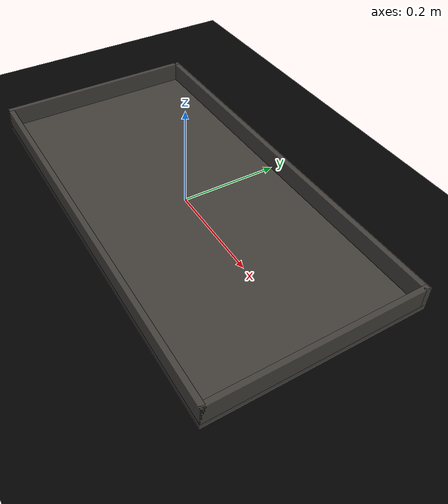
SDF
<?xml version="1.0" ?>
<sdf version="1.6">
  <world name="world">
    <model name="pool">
      <pose>0 0 0 0 0 0</pose>
      <link name="wall_xmin">
        <pose>-0.405 0.0 0.02 0 0 0</pose>
        <collision name="wall_xmin_collision">
          <pose>0 0 0 0 0 0</pose>
          <geometry>
            <box>
              <size>0.01 0.42000000000000004 0.04</size>
            </box>
          </geometry>
        </collision>
        <visual name="wall_xmin_visual">
          <pose>0 0 0 0 0 0</pose>
          <geometry>
            <box>
              <size>0.01 0.42000000000000004 0.04</size>
            </box>
          </geometry>
          <material>
            <ambient>0.78 0.74 0.68 0.3</ambient>
            <diffuse>0.88 0.84 0.78 0.3</diffuse>
            <specular>0.30 0.28 0.25 0.3</specular>
            <emissive>0.0  0.0  0.0  0.3</emissive>
          </material>
        </visual>
      </link>
      <link name="wall_xmax">
        <pose>0.405 0.0 0.02 0 0 0</pose>
        <collision name="wall_xmax_collision">
          <pose>0 0 0 0 0 0</pose>
          <geometry>
            <box>
              <size>0.01 0.42000000000000004 0.04</size>
            </box>
          </geometry>
        </collision>
        <visual name="wall_xmax_visual">
          <pose>0 0 0 0 0 0</pose>
          <geometry>
            <box>
              <size>0.01 0.42000000000000004 0.04</size>
            </box>
          </geometry>
          <material>
            <ambient>0.78 0.74 0.68 0.3</ambient>
            <diffuse>0.88 0.84 0.78 0.3</diffuse>
            <specular>0.30 0.28 0.25 0.3</specular>
            <emissive>0.0  0.0  0.0  0.3</emissive>
          </material>
        </visual>
      </link>
      <link name="wall_ymin">
        <pose>0.0 -0.20500000000000002 0.02 0 0 0</pose>
        <collision name="wall_ymin_collision">
          <pose>0 0 0 0 0 0</pose>
          <geometry>
            <box>
              <size>0.8200000000000001 0.01 0.04</size>
            </box>
          </geometry>
        </collision>
        <visual name="wall_ymin_visual">
          <pose>0 0 0 0 0 0</pose>
          <geometry>
            <box>
              <size>0.8200000000000001 0.01 0.04</size>
            </box>
          </geometry>
          <material>
            <ambient>0.78 0.74 0.68 0.3</ambient>
            <diffuse>0.88 0.84 0.78 0.3</diffuse>
            <specular>0.30 0.28 0.25 0.3</specular>
            <emissive>0.0  0.0  0.0  0.3</emissive>
          </material>
        </visual>
      </link>
      <link name="wall_ymax">
        <pose>0.0 0.20500000000000002 0.02 0 0 0</pose>
        <collision name="wall_ymax_collision">
          <pose>0 0 0 0 0 0</pose>
          <geometry>
            <box>
              <size>0.8200000000000001 0.01 0.04</size>
            </box>
          </geometry>
        </collision>
        <visual name="wall_ymax_visual">
          <pose>0 0 0 0 0 0</pose>
          <geometry>
            <box>
              <size>0.8200000000000001 0.01 0.04</size>
            </box>
          </geometry>
          <material>
            <ambient>0.78 0.74 0.68 0.3</ambient>
            <diffuse>0.88 0.84 0.78 0.3</diffuse>
            <specular>0.30 0.28 0.25 0.3</specular>
            <emissive>0.0  0.0  0.0  0.3</emissive>
          </material>
        </visual>
      </link>
      <link name="floor">
        <pose>0.0 0.0 -0.005 0 0 0</pose>
        <collision name="floor_collision">
          <pose>0 0 0 0 0 0</pose>
          <geometry>
            <box>
              <size>0.8200000000000001 0.42000000000000004 0.01</size>
            </box>
          </geometry>
        </collision>
        <visual name="floor_visual">
          <pose>0 0 0 0 0 0</pose>
          <geometry>
            <box>
              <size>0.8200000000000001 0.42000000000000004 0.01</size>
            </box>
          </geometry>
          <material>
            <ambient>0.78 0.74 0.68 0.3</ambient>
            <diffuse>0.88 0.84 0.78 0.3</diffuse>
            <specular>0.30 0.28 0.25 0.3</specular>
            <emissive>0.0  0.0  0.0  0.3</emissive>
          </material>
        </visual>
      </link>
      <link name="ground_bg">
        <pose>0.0 0.0 -0.025 0 0 0</pose>
        <visual name="ground_bg_visual">
          <pose>0 0 0 0 0 0</pose>
          <geometry>
            <box>
              <size>100 100 0.002</size>
            </box>
          </geometry>
          <material>
            <ambient>0.0 0.0 0.0 1.0</ambient>
            <diffuse>0.0 0.0 0.0 1.0</diffuse>
            <specular>0.0 0.0 0.0 1.0</specular>
            <emissive>0.0 0.0 0.0 1.0</emissive>
          </material>
        </visual>
      </link>
    </model>
  </world>
</sdf>
